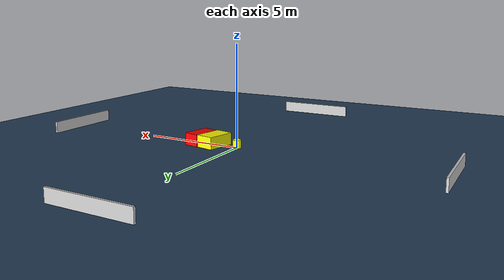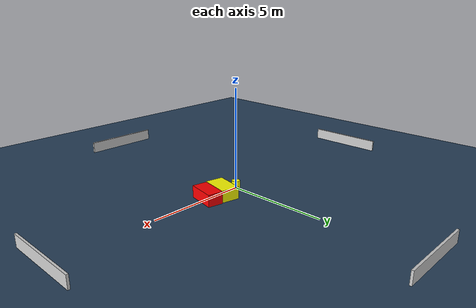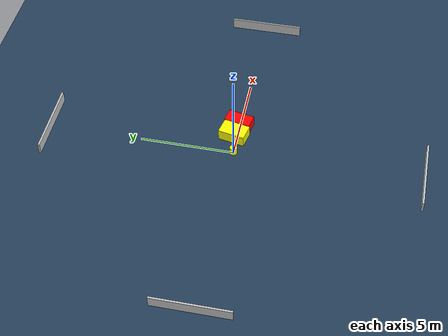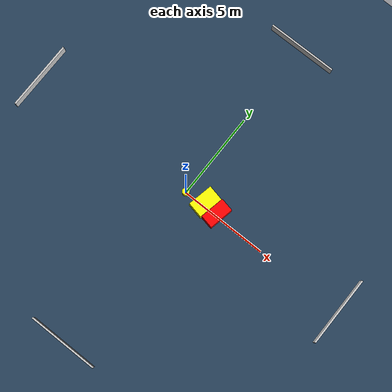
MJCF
<?xml version="1.0" ?>
<mujoco model="generated_environment">
  <option timestep="0.01" integrator="RK4" cone="elliptic"/>
  <default>
    <geom density="1"/>
  </default>
  <asset>
    <texture builtin="gradient" height="3072" name="skybox" rgb1="0.3 0.5 0.7" rgb2="0 0 0" type="skybox" width="512"/>
    <texture builtin="checker" height="300" name="groundplane" rgb1="0.2 0.3 0.4" rgb2="0.1 0.2 0.3" type="2d" width="300"/>
    <material name="groundplane" reflectance="0.2" texrepeat="5 5" texture="groundplane"/>
  </asset>
  <worldbody>
    <light dir="0 0 -1" directional="true" pos="0 0 1.5"/>
    <geom condim="3" friction="0.5 0.005 0.001" material="groundplane" name="floor" pos="0 0 0" size="0 0 0.05" type="plane"/>
    <body name="walls">
      <geom name="wall_1" condim="4" pos="-10.0 0.0 0.3" rgba="0.800000011920929 0.800000011920929 0.800000011920929 1.0" size="0.05 2.0 0.3" type="box"/>
      <geom name="wall_2" condim="4" pos="10.0 0.0 0.3" rgba="0.800000011920929 0.800000011920929 0.800000011920929 1.0" size="0.05 2.0 0.3" type="box"/>
      <geom name="wall_3" condim="4" pos="0.0 -10.0 0.3" rgba="0.800000011920929 0.800000011920929 0.800000011920929 1.0" size="2.0 0.05 0.3" type="box"/>
      <geom name="wall_4" condim="4" pos="0.0 10.0 0.3" rgba="0.800000011920929 0.800000011920929 0.800000011920929 1.0" size="2.0 0.05 0.3" type="box"/>
    </body>
    <body name="robot">
      <joint name="joint_x" type="slide" pos="0 0 0" axis="1 0 0"/>
      <joint name="joint_y" type="slide" pos="0 0 0" axis="0 1 0"/>
      <geom name="robot" type="cylinder" pos="0.0 0.0 0.2" size="0.2 0.2 0.0" mass="5.0" friction="1.0 0.005 0.0001" condim="4" rgba="1.0 1.0 0.0 1.0"/>
    </body>
    <body name="obstacle_1_movable">
      <geom name="obstacle_1_movable" condim="4" pos="1.1537963877725517 0.19644245486648385 0.3" euler="0 0 348.2623753208336" friction="0.0 0.005 0.001" rgba="1.0 1.0 0.0 1.0" size="0.4532855110198024 0.7168575139546087 0.3" type="box" mass="0.1"/>
      <joint type="free"/>
    </body>
    <body name="obstacle_2_static">
      <geom name="obstacle_2_static" condim="4" pos="1.9952165721346184 0.08506250467282685 0.3" euler="0 0 78.78038646444344" friction="0.0 0.005 0.001" rgba="1.0 0.0 0.0 1.0" size="0.7074875153444937 0.3804721283509566 0.3" type="box"/>
    </body>
  </worldbody>
  <actuator>
    <motor name="actuator_x" joint="joint_x" gear="1" ctrlrange="-1 1"/>
    <motor name="actuator_y" joint="joint_y" gear="1" ctrlrange="-1 1"/>
  </actuator>
</mujoco>
